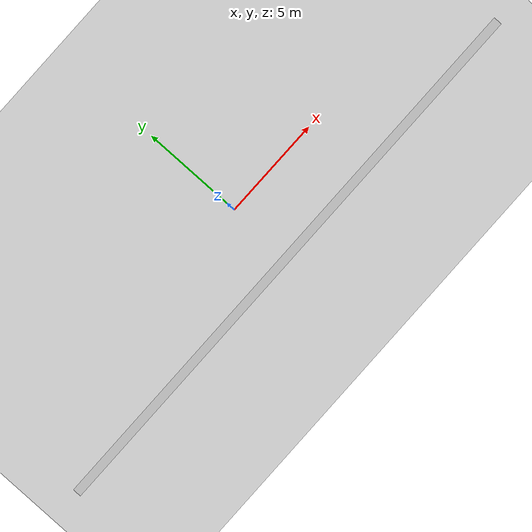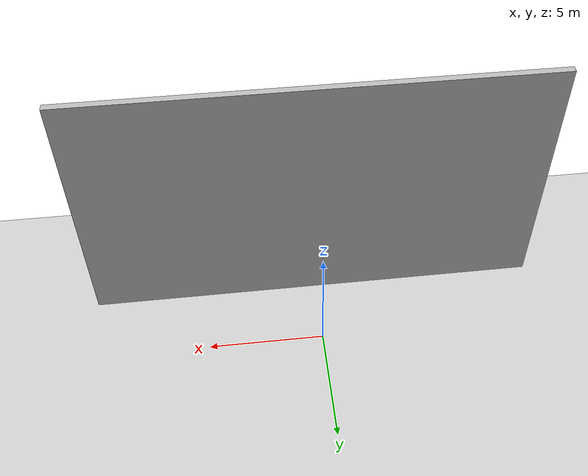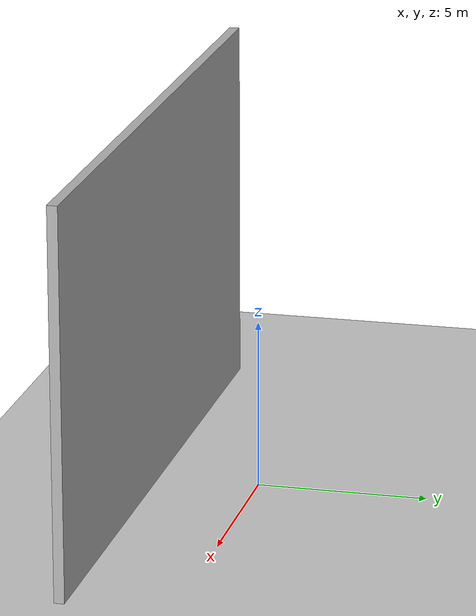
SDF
<?xml version="1.0" ?>
<sdf version='1.4'>
  <world name='default'>
    <light name='sun' type='directional'>
      <cast_shadows>1</cast_shadows>
      <pose>-5 -5 20 0 -0 0</pose>
      <diffuse>0.8 0.8 0.8 1</diffuse>
      <specular>0.2 0.2 0.2 1</specular>
      <attenuation>
        <range>500</range>
        <constant>0.9</constant>
        <linear>0.01</linear>
        <quadratic>0.001</quadratic>
      </attenuation>
      <direction>-0.5 0.1 -0.9</direction>
    </light>
    <model name='ground_plane'>
      <static>1</static>
      <link name='link'>
        <collision name='collision'>
          <geometry>
            <plane>
              <normal>0 0 1</normal>
              <size>100 100</size>
            </plane>
          </geometry>
          <surface>
            <friction>
              <ode>
                <mu>100</mu>
                <mu2>50</mu2>
              </ode>
            </friction>
            <bounce/>
            <contact>
              <ode/>
            </contact>
          </surface>
          <max_contacts>10</max_contacts>
        </collision>
        <visual name='visual'>
          <cast_shadows>0</cast_shadows>
          <geometry>
            <plane>
              <normal>0 0 1</normal>
              <size>100 100</size>
            </plane>
          </geometry>
          <material>
            <script>
              <uri>file://media/materials/scripts/gazebo.material</uri>
              <name>Gazebo/Grey</name>
            </script>
          </material>
        </visual>
        <velocity_decay>
          <linear>0</linear>
          <angular>0</angular>
        </velocity_decay>
        <self_collide>0</self_collide>
        <kinematic>0</kinematic>
        <gravity>1</gravity>
      </link>
    </model>
    <physics type='ode'>
      <max_step_size>0.005</max_step_size>
      <real_time_factor>1</real_time_factor>
      <real_time_update_rate>200</real_time_update_rate>
      <gravity>0 0 -9.8</gravity>
    </physics>
    <scene>
      <ambient>0.4 0.4 0.4 1</ambient>
      <background>0.7 0.7 0.7 1</background>
      <shadows>1</shadows>
    </scene>
    <spherical_coordinates>
      <surface_model>EARTH_WGS84</surface_model>
      <latitude_deg>0</latitude_deg>
      <longitude_deg>0</longitude_deg>
      <elevation>0</elevation>
      <heading_deg>0</heading_deg>
    </spherical_coordinates>

    <include>
      <name>wall</name>
      <uri>model://wall</uri>
      <pose>0 -3.15 5.6 0 0 1.57079632679</pose>
    </include>

  </world>
</sdf>

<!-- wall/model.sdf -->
<sdf version="1.5">
    <model name='unit_box'>
      <static>1</static>
      <pose frame=''>0 0 0 0 0 0</pose>
      <link name='link'>
        <inertial>
          <mass>1</mass>
          <inertia>
            <ixx>0.166667</ixx>
            <ixy>0</ixy>
            <ixz>0</ixz>
            <iyy>0.166667</iyy>
            <iyz>0</iyz>
            <izz>0.166667</izz>
          </inertia>
          <pose frame=''>0 0 0 0 0 0</pose>
        </inertial>
        <visual name='visual'>
          <geometry>
            <box>
              <size>0.3 20 11.2</size>
            </box>
          </geometry>
            <material>
                <script>
                    <name>Wall</name>
                    <uri>model://wall/scripts/repeated.material</uri>
                </script>
            </material>
        </visual>
        <self_collide>0</self_collide>
        <enable_wind>0</enable_wind>
        <kinematic>0</kinematic>
      </link>
    </model>
</sdf>
